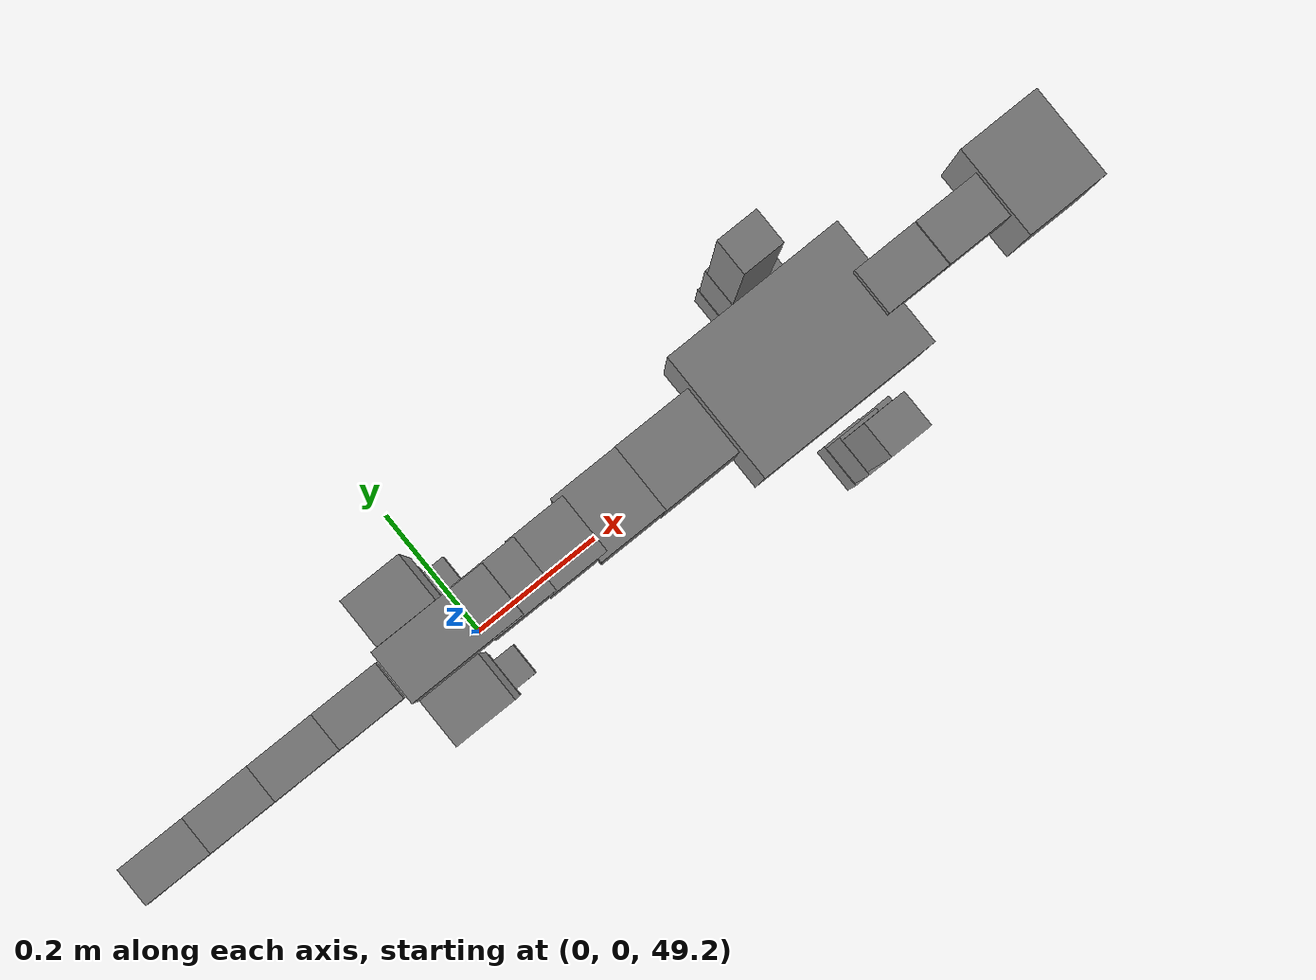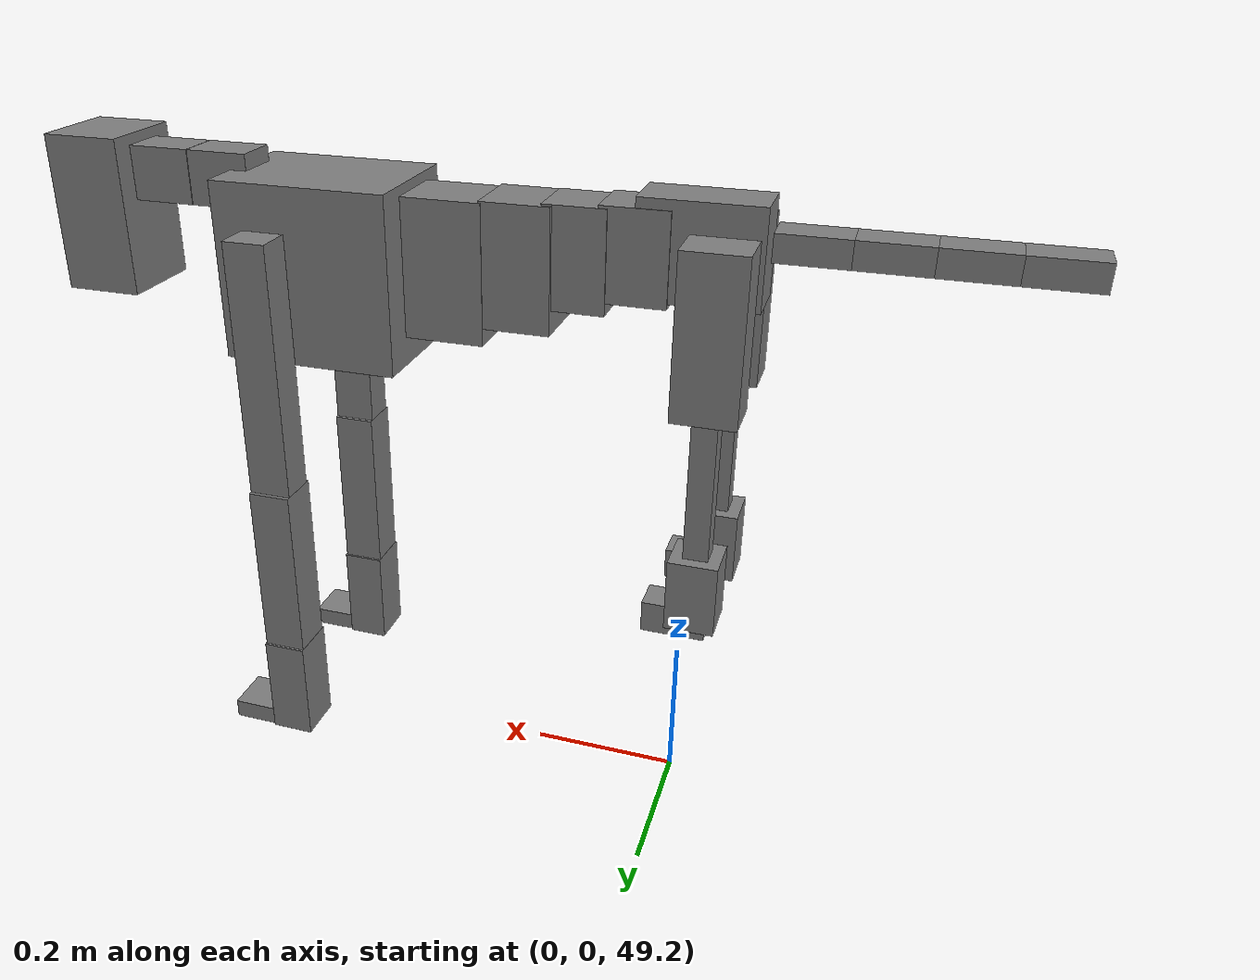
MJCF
<mujoco model="dog">

    <default>
        <joint armature="0.02" stiffness="1" damping="0.2" limited="true"/>
        <geom condim="3" friction="1 0.05 0.05" margin="0.01"/>
        <motor ctrllimited="true" ctrlrange="-1.0 1.0" forcelimited="true" gear="50"/>
    </default>

    <compiler inertiafromgeom="true" angle="radian"/>

    <option timestep="0.016" iterations="50" tolerance="1e-10" solver="Newton" jacobian="dense" cone="pyramidal"/>

    <size nconmax="20000" njmax="60000" nstack="5000000"/>
    <visual>
        <map force="0.1" zfar="30"/>
        <rgba haze="0.15 0.25 0.35 1"/>
        <quality shadowsize="2048"/>
        <global offwidth="800" offheight="800"/>
    </visual>

    <asset>
        <texture type="skybox" builtin="gradient" rgb1="0.3 0.5 0.7" rgb2="0 0 0" width="512" height="512"/>
        <texture name="texplane" type="2d" builtin="checker" rgb1=".2 .3 .4" rgb2=".1 0.15 0.2" width="512" height="512"
                 mark="cross" markrgb=".8 .8 .8"/>
        <texture name="texgeom" type="cube" builtin="flat" mark="cross" width="127" height="1278" rgb1="0.8 0.6 0.4"
                 rgb2="0.8 0.6 0.4" markrgb="1 1 1" random="0.01"/>

        <material name="matplane" reflectance="0.3" texture="texplane" texrepeat="1 1" texuniform="true"/>
        <material name="matgeom" texture="texgeom" texuniform="true" rgba="0.8 0.6 .4 1"/>
    </asset>

    <worldbody>
        <geom name="floor" pos="0 0 0" size="0 0 .25" type="plane" material="matplane" condim="3"/>

        <light directional="false" diffuse=".2 .2 .2" specular="0 0 0" pos="0 0 5" dir="0 0 -1" castshadow="false"/>
        <light mode="targetbodycom" target="torso" directional="false" diffuse=".8 .8 .8" specular="0.3 0.3 0.3"
               pos="0 0 4.0" dir="0 0 -1"/>

        <body name="root" pos="0 0 50">
            <freejoint name="root_1"/>
            <geom type="box" pos="0 0 -0.02" size="0.0774  0.0358  0.063" density="2030"/>

            <body name="spine1" pos="0.054 0 0">
                <joint name="spine1_y" axis="0 1 0" range="0 0.7" limited="true"/>
                <geom type="box" pos="0.02375 0 -0.03" size="0.04375  0.0375  0.05985" density="2030"/>

                <body name="spine2" pos="0.0612 0 0">
                    <joint name="spine2_y" axis="0 1 0" range="-0.15 0.15" limited="true"/>
                    <geom type="box" pos="0.03555  0  -0.04" size="0.04055  0.039  0.06615" density="2030"/>

                    <body name="spine3" pos="0.0730 0 0">
                        <joint name="spine3_y" axis="0 1 0" range="-0.15 0.15" limited="true"/>
                        <geom type="box" pos="0.03555  0  -0.057" size="0.04555  0.0445  0.081" density="2030"/>

                        <body name="spine4" pos="0.0780 0 0">
                            <joint name="spine4_y" axis="0 1 0" range="-0.15 0.15" limited="true"/>
                            <geom type="box" pos="0.05265  0  -0.07" size="0.05265  0.045  0.09135" density="2030"/>

                            <body name="torso" pos="0.1082 0 0">
                                <joint name="torso_y" axis="0 1 0" range="-0.15 0.15" limited="true"/>
                                <geom type="box" pos="0.11925  0  -0.085" size="0.11925  0.085  0.11745"
                                      density="2030"/>

                                <body name="neck1" pos="0.2160  0   0.0180">
                                    <joint name="neck1_y" axis="0 1 0" range="-1.2  -1" limited="true"/>
                                    <geom type="box" pos="0.0423  0  0" size="0.0423  0.03  0.036" density="2325"/>

                                    <body name="neck2" pos="0.0853  0  0">
                                        <joint name="neck2_y" axis="0 1 0" range="0.1  0" limited="true"/>
                                        <geom type="box" pos="0.0423  0  0" size="0.0423  0.03  0.036" density="2325"/>

                                        <body name="head" pos="0.0853  0  0">
                                            <joint name="head_y" axis="0 1 0" range="-0.3  -0.2" limited="true"/>
                                            <geom type="box" pos="0.0531  0  -0.055" size="0.0531  0.06  0.1044"
                                                  density="4030"/>

                                        </body>
                                    </body>
                                </body>

                                <body name="front_shoulder" pos="0.156  0   -0.0480">
                                    <joint name="front_shoulder_y" axis="0 1 0" range="-1 1.5" limited="true"/>
                                    <geom type="box" pos="0 0.13 -0.1578" size="0.0284  0.0243  0.1845" density="1158"/>
                                    <geom type="box" pos="0 -0.13 -0.1578" size="0.0284  0.0243  0.1845"
                                          density="1158"/>

                                    <body name="front_elbow" pos="0  0  -0.3156">
                                        <joint name="front_elbow_y" axis="0 1 0" range="-2 0" limited="true"/>
                                        <geom type="box" pos="0 0.13 -0.1267" size="0.0286  0.0292  0.1267"
                                              density="1081"/>
                                        <geom type="box" pos="0 -0.13 -0.1267" size="0.0286  0.0292  0.1267"
                                              density="1081"/>

                                        <body name="front_wrist" pos="0  0  -0.2535">
                                            <joint name="front_wrist_y" axis="0 1 0" range="-0.2 0" limited="true"/>
                                            <geom type="box" pos="0 0.13 -0.0587" size="0.0292  0.0324  0.0718"
                                                  density="1664"/>
                                            <geom type="box" pos="0 -0.13 -0.0587" size="0.0292  0.0324  0.0718"
                                                  density="1664"/>

                                            <body name="front_finger_end" pos="0  0  -0.1174">
                                                <joint name="front_finger_y" axis="0 1 0" range="-0.4 1"
                                                       limited="true"/>
                                                <geom type="box" pos="0.0316  0.13  0.0021"
                                                      size="0.0580  0.0316  0.0129" density="1515"/>
                                                <geom type="box" pos="0.0316  -0.13  0.0021"
                                                      size="0.0580  0.0316  0.0129" density="1515"/>

                                            </body>

                                        </body>
                                    </body>
                                </body>

                            </body>
                        </body>
                    </body>
                </body>
            </body>

            <body name="back_hip" pos="-0.03 0 -0.018">
                <joint name="back_hip_y" axis="0 1 0" range="-1.5 0.3" limited="true"/>
                <geom type="box" pos="0 0.07 -0.0825" size="0.0413  0.0324  0.1053" density="1154"/>
                <geom type="box" pos="0 -0.07 -0.0825" size="0.0413  0.0324  0.1053" density="1154"/>

                <body name="back_knee" pos="0  0  -0.1649">
                    <joint name="back_knee_y" axis="0 1 0" range="0 2.8" limited="true"/>
                    <geom type="box" pos="0 0.07 -0.1128" size="0.0162  0.0159  0.1283" density="1227"/>
                    <geom type="box" pos="0 -0.07 -0.1128" size="0.0162  0.0159  0.1283" density="1227"/>

                    <body name="back_ankle" pos="0  0  -0.2256">
                        <joint name="back_ankle_y" axis="0 1 0" range="-2.2 0" limited="true"/>
                        <geom type="box" pos="0 0.07 -0.0377" size="0.0323  0.0323  0.0490" density="1284"/>
                        <geom type="box" pos="0 -0.07 -0.0377" size="0.0323  0.0323  0.0490" density="1284"/>

                        <body name="back_toe_end" pos="0  0  -0.0755">
                            <joint name="back_toe_y" axis="0 1 0" range="-0.4 1" limited="true"/>
                            <geom type="box" pos="0.0226  0.07  -0.0060" size="0.0415  0.0226  0.0210" density="1515"/>
                            <geom type="box" pos="0.0226  -0.07  -0.0060" size="0.0415  0.0226  0.0210" density="1515"/>

                        </body>
                    </body>
                </body>
            </body>

            <body name="tail1" pos="-0.074 0 -0.006">
                <joint name="tail1_y" axis="0 1 0" range="-0.2 0.2" limited="true"/>
                <geom type="box" pos="-0.0536  0  0" size="0.045  0.025  0.0175" density="1587"/>

                <body name="tail2" pos="-0.09 0 0">
                    <joint name="tail2_y" axis="0 1 0" range="-0.2 0.2" limited="true"/>
                    <geom type="box" pos="-0.0536  0  0" size="0.045  0.025  0.0175" density="1587"/>

                    <body name="tail3" pos="-0.09 0 0">
                        <joint name="tail3_y" axis="0 1 0" range="-0.2 0.2" limited="true"/>
                        <geom type="box" pos="-0.0536  0  0" size="0.045  0.025  0.0175" density="1587"/>

                        <body name="tail4" pos="-0.09 0 0">
                            <joint name="tail4_y" axis="0 1 0" range="-0.2 0.2" limited="true"/>
                            <geom type="box" pos="-0.0536  0  0" size="0.045  0.025  0.0175" density="1587"/>

                        </body>
                    </body>
                </body>
            </body>
        </body>
    </worldbody>

    <actuator>
        <motor joint="spine1_y" forcerange="-150 150     "/>
        <motor joint="spine2_y" forcerange="-150 150     "/>
        <motor joint="spine3_y" forcerange="-150 150     "/>
        <motor joint="spine4_y" forcerange="-150 150     "/>
        <motor joint="torso_y" forcerange="-150 150     "/>
        <motor joint="neck1_y" forcerange="-100 100       "/>
        <motor joint="neck2_y" forcerange="-100 100       "/>
        <motor joint="head_y" forcerange="-150 150       "/>
        <motor joint="front_shoulder_y" forcerange="-111.13 150.65"/>
        <motor joint="front_elbow_y" forcerange="-185.92 126.78"/>
        <motor joint="front_wrist_y" forcerange="-123.07 136.14"/>
        <motor joint="front_finger_y" forcerange="-75.37 53.32"/>
        <motor joint="back_hip_y" forcerange="-330.94 300.81"/>
        <motor joint="back_knee_y" forcerange="-216.97 214.58"/>
        <motor joint="back_angle_y" forcerange="-189.98 226.79"/>
        <motor joint="back_toe_y" forcerange="-76.38 24.62"/>
        <motor joint="tail1_y" forcerange="-50 50     "/>
        <motor joint="tail2_y" forcerange="-50 50     "/>
        <motor joint="tail3_y" forcerange="-50 50     "/>
        <motor joint="tail4_y" forcerange="-50 50     "/>
    </actuator>
</mujoco>
